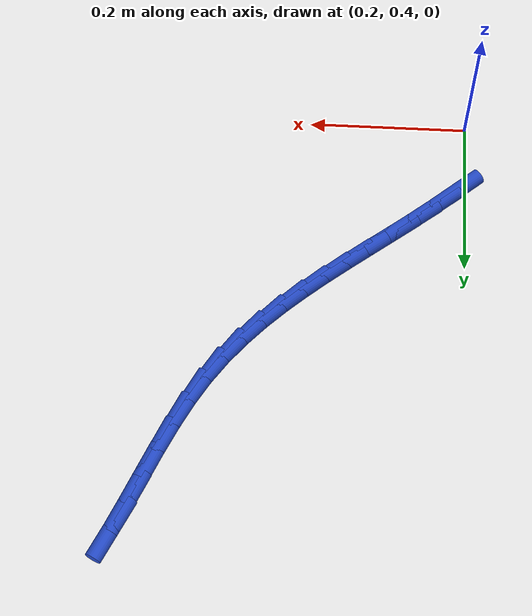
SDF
<sdf version="1.6">
 <world name="default">
  <model name="ground_plane">
   <static>1</static>
   <link name="link">
    <collision name="collision">
     <geometry><plane><normal>0 0 1</normal><size>100 100</size></plane></geometry>
     <surface><friction><ode><mu>100</mu><mu2>50</mu2></ode></friction></surface>
    </collision>
    <visual name="visual">
     <cast_shadows>0</cast_shadows>
     <geometry><plane><normal>0 0 1</normal><size>100 100</size></plane></geometry>
     <material>
      <script><uri>file://media/materials/scripts/gazebo.material</uri><name>Gazebo/WhiteGlow</name></script>
     </material>
    </visual>
   </link>
  </model>
  <model name="line">
   <link name="link_17">
    <pose>0.2136604173738278 0.49779006045492846 0.01 0 1.57 0.696773197397411</pose>
    <collision name="collision">
     <geometry><cylinder><radius>0.01</radius><length>0.08</length></cylinder></geometry>
    </collision>
    <visual name="visual">
     <material>
      <script><name>Gazebo/Blue</name><uri>file://media/materials/scripts/gazebo.material</uri></script>
     </material>
     <geometry><cylinder><radius>0.01</radius><length>0.08</length></cylinder></geometry>
    </visual>
   </link>
   <link name="link_18">
    <pose>0.23983825386397728 0.5196953404214933 0.01 0 1.57 0.6741349119335827</pose>
    <collision name="collision">
     <geometry><cylinder><radius>0.01</radius><length>0.08</length></cylinder></geometry>
    </collision>
    <visual name="visual">
     <material>
      <script><name>Gazebo/Blue</name><uri>file://media/materials/scripts/gazebo.material</uri></script>
     </material>
     <geometry><cylinder><radius>0.01</radius><length>0.08</length></cylinder></geometry>
    </visual>
   </link>
   <link name="link_19">
    <pose>0.26644212219164876 0.5409520065835117 0.01 0 1.57 0.6572586589582546</pose>
    <collision name="collision">
     <geometry><cylinder><radius>0.01</radius><length>0.08</length></cylinder></geometry>
    </collision>
    <visual name="visual">
     <material>
      <script><name>Gazebo/Blue</name><uri>file://media/materials/scripts/gazebo.material</uri></script>
     </material>
     <geometry><cylinder><radius>0.01</radius><length>0.08</length></cylinder></geometry>
    </visual>
   </link>
   <link name="link_20">
    <pose>0.29325597943236603 0.5616448412804551 0.01 0 1.57 0.6493689240649307</pose>
    <collision name="collision">
     <geometry><cylinder><radius>0.01</radius><length>0.08</length></cylinder></geometry>
    </collision>
    <visual name="visual">
     <material>
      <script><name>Gazebo/Blue</name><uri>file://media/materials/scripts/gazebo.material</uri></script>
     </material>
     <geometry><cylinder><radius>0.01</radius><length>0.08</length></cylinder></geometry>
    </visual>
   </link>
   <link name="link_21">
    <pose>0.320072252769558 0.5820039998922449 0.01 0 1.57 0.6514314391784285</pose>
    <collision name="collision">
     <geometry><cylinder><radius>0.01</radius><length>0.08</length></cylinder></geometry>
    </collision>
    <visual name="visual">
     <material>
      <script><name>Gazebo/Blue</name><uri>file://media/materials/scripts/gazebo.material</uri></script>
     </material>
     <geometry><cylinder><radius>0.01</radius><length>0.08</length></cylinder></geometry>
    </visual>
   </link>
   <link name="link_22">
    <pose>0.3466854681883977 0.6022956596764641 0.01 0 1.57 0.6636277277835771</pose>
    <collision name="collision">
     <geometry><cylinder><radius>0.01</radius><length>0.08</length></cylinder></geometry>
    </collision>
    <visual name="visual">
     <material>
      <script><name>Gazebo/Blue</name><uri>file://media/materials/scripts/gazebo.material</uri></script>
     </material>
     <geometry><cylinder><radius>0.01</radius><length>0.08</length></cylinder></geometry>
    </visual>
   </link>
   <link name="link_23">
    <pose>0.37289015167405754 0.622785997890695 0.01 0 1.57 0.6861358870570317</pose>
    <collision name="collision">
     <geometry><cylinder><radius>0.01</radius><length>0.08</length></cylinder></geometry>
    </collision>
    <visual name="visual">
     <material>
      <script><name>Gazebo/Blue</name><uri>file://media/materials/scripts/gazebo.material</uri></script>
     </material>
     <geometry><cylinder><radius>0.01</radius><length>0.08</length></cylinder></geometry>
    </visual>
   </link>
   <link name="link_24">
    <pose>0.39848082921170996 0.6437411917925197 0.01 0 1.57 0.719091253221694</pose>
    <collision name="collision">
     <geometry><cylinder><radius>0.01</radius><length>0.08</length></cylinder></geometry>
    </collision>
    <visual name="visual">
     <material>
      <script><name>Gazebo/Blue</name><uri>file://media/materials/scripts/gazebo.material</uri></script>
     </material>
     <geometry><cylinder><radius>0.01</radius><length>0.08</length></cylinder></geometry>
    </visual>
   </link>
   <link name="link_25">
    <pose>0.4232520267865276 0.6654274186395208 0.01 0 1.57 0.7625114891809333</pose>
    <collision name="collision">
     <geometry><cylinder><radius>0.01</radius><length>0.08</length></cylinder></geometry>
    </collision>
    <visual name="visual">
     <material>
      <script><name>Gazebo/Blue</name><uri>file://media/materials/scripts/gazebo.material</uri></script>
     </material>
     <geometry><cylinder><radius>0.01</radius><length>0.08</length></cylinder></geometry>
    </visual>
   </link>
   <link name="link_26">
    <pose>0.4469982703836833 0.688110855689281 0.01 0 1.57 0.8161875606576083</pose>
    <collision name="collision">
     <geometry><cylinder><radius>0.01</radius><length>0.08</length></cylinder></geometry>
    </collision>
    <visual name="visual">
     <material>
      <script><name>Gazebo/Blue</name><uri>file://media/materials/scripts/gazebo.material</uri></script>
     </material>
     <geometry><cylinder><radius>0.01</radius><length>0.08</length></cylinder></geometry>
    </visual>
   </link>
   <link name="link_27">
    <pose>0.46951408598834926 0.7120576801993824 0.01 0 1.57 0.879552467888</pose>
    <collision name="collision">
     <geometry><cylinder><radius>0.01</radius><length>0.08</length></cylinder></geometry>
    </collision>
    <visual name="visual">
     <material>
      <script><name>Gazebo/Blue</name><uri>file://media/materials/scripts/gazebo.material</uri></script>
     </material>
     <geometry><cylinder><radius>0.01</radius><length>0.08</length></cylinder></geometry>
    </visual>
   </link>
   <link name="link_28">
    <pose>0.49059399958569805 0.7375340694274075 0.01 0 1.57 0.951556543378179</pose>
    <collision name="collision">
     <geometry><cylinder><radius>0.01</radius><length>0.08</length></cylinder></geometry>
    </collision>
    <visual name="visual">
     <material>
      <script><name>Gazebo/Blue</name><uri>file://media/materials/scripts/gazebo.material</uri></script>
     </material>
     <geometry><cylinder><radius>0.01</radius><length>0.08</length></cylinder></geometry>
    </visual>
   </link>
   <link name="link_29">
    <pose>0.5100325371609027 0.7648062006309391 0.01 0 1.57 1.027840118348146</pose>
    <collision name="collision">
     <geometry><cylinder><radius>0.01</radius><length>0.08</length></cylinder></geometry>
    </collision>
    <visual name="visual">
     <material>
      <script><name>Gazebo/Blue</name><uri>file://media/materials/scripts/gazebo.material</uri></script>
     </material>
     <geometry><cylinder><radius>0.01</radius><length>0.08</length></cylinder></geometry>
    </visual>
   </link>
   <link name="link_30">
    <pose>0.5276859185326649 0.7940600403217871 0.01 0 1.57 1.0896895256035029</pose>
    <collision name="collision">
     <geometry><cylinder><radius>0.01</radius><length>0.08</length></cylinder></geometry>
    </collision>
    <visual name="visual">
     <material>
      <script><name>Gazebo/Blue</name><uri>file://media/materials/scripts/gazebo.material</uri></script>
     </material>
     <geometry><cylinder><radius>0.01</radius><length>0.08</length></cylinder></geometry>
    </visual>
   </link>
   <link name="link_31">
    <pose>0.5438143462708526 0.8249563200588297 0.01 0 1.57 1.131644790193717</pose>
    <collision name="collision">
     <geometry><cylinder><radius>0.01</radius><length>0.08</length></cylinder></geometry>
    </collision>
    <visual name="visual">
     <material>
      <script><name>Gazebo/Blue</name><uri>file://media/materials/scripts/gazebo.material</uri></script>
     </material>
     <geometry><cylinder><radius>0.01</radius><length>0.08</length></cylinder></geometry>
    </visual>
   </link>
   <link name="link_32">
    <pose>0.5588405799720534 0.8569444241787386 0.01 0 1.57 1.1553986535935807</pose>
    <collision name="collision">
     <geometry><cylinder><radius>0.01</radius><length>0.08</length></cylinder></geometry>
    </collision>
    <visual name="visual">
     <material>
      <script><name>Gazebo/Blue</name><uri>file://media/materials/scripts/gazebo.material</uri></script>
     </material>
     <geometry><cylinder><radius>0.01</radius><length>0.08</length></cylinder></geometry>
    </visual>
   </link>
   <link name="link_33">
    <pose>0.5731878234722747 0.8894731594438452 0.01 0 1.57 1.1618820573560587</pose>
    <collision name="collision">
     <geometry><cylinder><radius>0.01</radius><length>0.08</length></cylinder></geometry>
    </collision>
    <visual name="visual">
     <material>
      <script><name>Gazebo/Blue</name><uri>file://media/materials/scripts/gazebo.material</uri></script>
     </material>
     <geometry><cylinder><radius>0.01</radius><length>0.08</length></cylinder></geometry>
    </visual>
   </link>
   <link name="link_34">
    <pose>0.5872792806075242 0.9219913326164818 0.01 0 1.57 1.151109035983466</pose>
    <collision name="collision">
     <geometry><cylinder><radius>0.01</radius><length>0.08</length></cylinder></geometry>
    </collision>
    <visual name="visual">
     <material>
      <script><name>Gazebo/Blue</name><uri>file://media/materials/scripts/gazebo.material</uri></script>
     </material>
     <geometry><cylinder><radius>0.01</radius><length>0.08</length></cylinder></geometry>
    </visual>
   </link>
   <link name="link_35">
    <pose>0.6015381552138094 0.9539477504589801 0.01 0 1.57 1.1221009711172223</pose>
    <collision name="collision">
     <geometry><cylinder><radius>0.01</radius><length>0.08</length></cylinder></geometry>
    </collision>
    <visual name="visual">
     <material>
      <script><name>Gazebo/Blue</name><uri>file://media/materials/scripts/gazebo.material</uri></script>
     </material>
     <geometry><cylinder><radius>0.01</radius><length>0.08</length></cylinder></geometry>
    </visual>
   </link>
  </model>
 </world>
</sdf>
